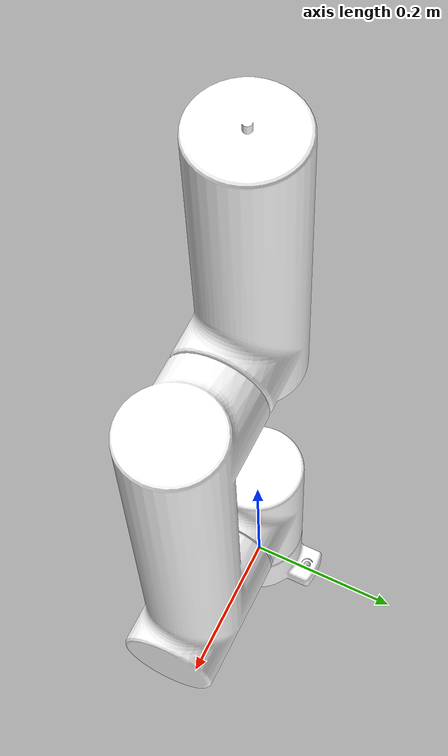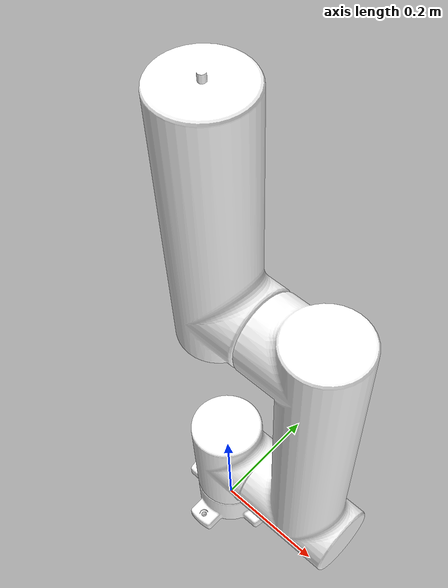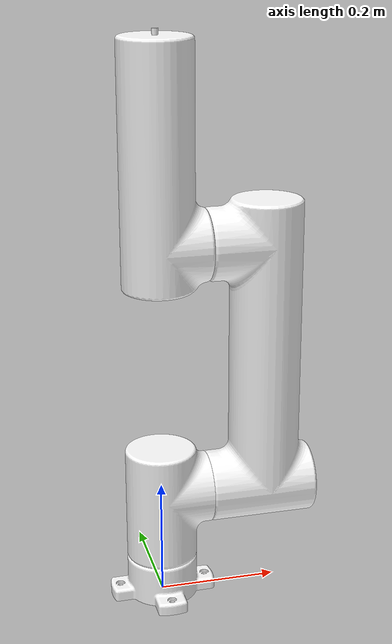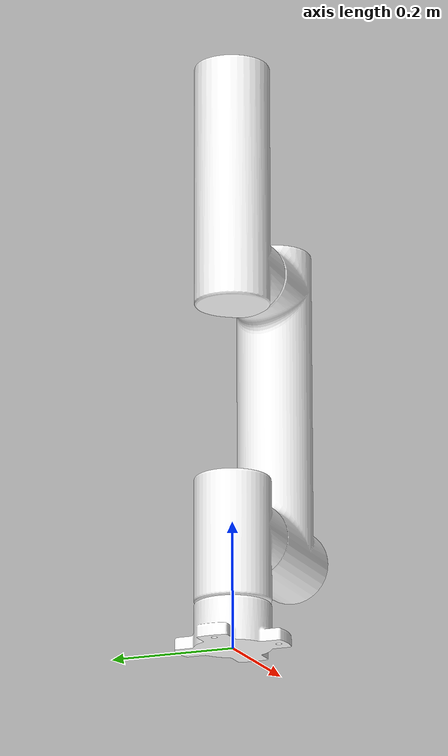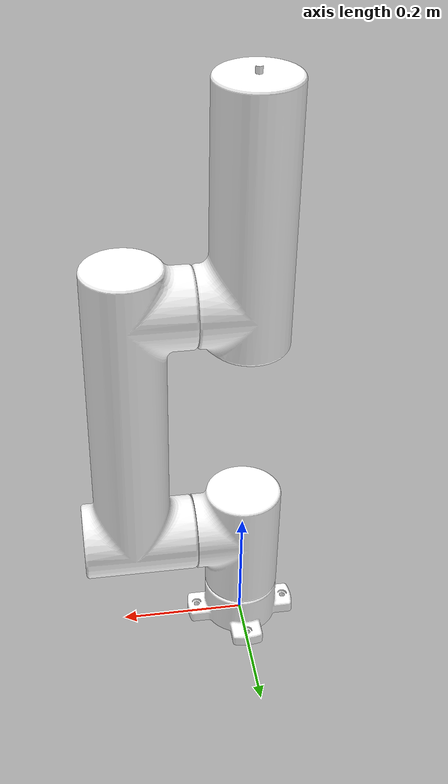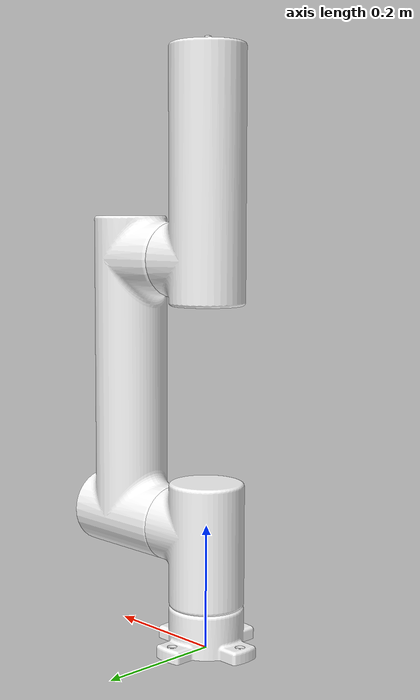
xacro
<?xml version="1.0" encoding="utf-8"?>
<robot xmlns:xacro="http://www.ros.org/wiki/xacro" name="myrobot">

	<xacro:arg name="gazebo" default="true"/>

  <xacro:include filename="$(find myrobot_description)/robots/myrobot.xacro" >
  	<xacro:arg name="gazebo" value="${gazebo}"/>
  </xacro:include>

  <xacro:myrobot connected_to='world' arm_id='myrobot'/>
</robot>

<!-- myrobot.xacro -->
<robot xmlns:xacro="http://www.ros.org/wiki/xacro" name="myrobot">

  <xacro:macro name="myrobot" params="arm_id:='myrobot' package_name:='myrobot_description' connected_to:='' xyz:='0 0 0' rpy:='0 0 0' hardware_interface:=''">
    <xacro:unless value="${not connected_to}">
      <link name="${connected_to}"/>
      <joint name="${arm_id}_joint_${connected_to}" type="fixed">
        <parent link="${connected_to}"/>
        <child link="${arm_id}_link1"/>
        <origin rpy="${rpy}" xyz="${xyz}"/>
      </joint>
    </xacro:unless>

    <xacro:property name="PI" value="3.1415926535897931"/>
    <xacro:property name="mass" value="1" />
    <!-- arbitrary value for mass -->
    <xacro:property name="width" value="0.1" />
    <!-- Square dimensions (widthxwidth) of beams -->
    <xacro:property name="height1" value="2" />
    <!-- Link 1 -->
    <xacro:property name="height2" value="1" />
    <!-- Link 2 -->
    <xacro:property name="height3" value="1" />
    <!-- Link 3 -->

    <!-- Base Link -->
    <link name="${arm_id}_link1">
      <collision>
        <origin xyz="0 0 0" rpy="0 0 0"/>
        <geometry>
          <mesh filename="package://myrobot_description/meshes/Base.stl"/>
        </geometry>
      </collision>

      <visual>
        <origin xyz="0 0 0" rpy="0 0 0"/>
        <geometry>
          <mesh filename="package://myrobot_description/meshes/Base.stl"/>
        </geometry>
        <material name="">
          <color rgba="1 1 1 1"/>
        </material>
      </visual>

      <inertial>
        <origin xyz="0 0 0" rpy="0 0 0"/>
        <mass value="${mass}"/>
        <inertia ixx="${mass / 12.0 * (width*width + height1*height1)}" ixy="0.0" ixz="0.0" iyy="${mass / 12.0 * (height1*height1 + width*width)}" iyz="0.0" izz="${mass / 12.0 * (width*width + width*width)}"/>
      </inertial>
    </link>

    <joint name="${arm_id}_joint1" type="continuous">
      <parent link="${arm_id}_link1"/>
      <child link="${arm_id}_link2"/>
      <origin xyz="0 0 0.07" rpy="0 0 0"/>
      <axis xyz="0 0 1"/>
      <dynamics damping="0.7"/>
    </joint>

    <!-- Middle Link -->
    <link name="${arm_id}_link2">
      <collision>
        <origin xyz="0 0 0" rpy="0 0 0"/>
        <geometry>
          <mesh filename="package://myrobot_description/meshes/Link1.stl"/>
        </geometry>
      </collision>

      <visual>
        <origin xyz="0 0 0" rpy="0 0 0"/>
        <geometry>
          <mesh filename="package://myrobot_description/meshes/Link1.stl"/>
        </geometry>
        <material name="">
          <color rgba="1 1 1 1"/>
        </material>
      </visual>

      <inertial>
        <origin xyz="0 0 0" rpy="0 0 0"/>
        <mass value="${mass}"/>
        <inertia ixx="${mass / 12.0 * (width*width + height2*height2)}" ixy="0.0" ixz="0.0" iyy="${mass / 12.0 * (height2*height2 + width*width)}" iyz="0.0" izz="${mass / 12.0 * (width*width + width*width)}"/>
      </inertial>
    </link>

    <joint name="${arm_id}_joint2" type="continuous">
      <parent link="${arm_id}_link2"/>
      <child link="${arm_id}_link3"/>
      <origin xyz="0.08 0 0.12" rpy="${pi/2} 0 ${pi/2}"/>
      <axis xyz="0 0 1"/>
      <dynamics damping="0.7"/>
    </joint>

    <!-- Top Link -->
    <link name="${arm_id}_link3">
      <collision>
        <origin xyz="0 0 0" rpy="0 0 0"/>
        <geometry>
          <mesh filename="package://myrobot_description/meshes/Link2.stl"/>
        </geometry>
      </collision>

      <visual>
        <origin xyz="0 0 0" rpy="0 0 0"/>
        <geometry>
          <mesh filename="package://myrobot_description/meshes/Link2.stl"/>
        </geometry>
        <material name="">
          <color rgba="1 1 1 1"/>
        </material>
      </visual>

      <inertial>
        <origin xyz="0 0 0" rpy="0 0 0"/>
        <mass value="${mass}"/>
        <inertia ixx="${mass / 12.0 * (width*width + height3*height3)}" ixy="0.0" ixz="0.0" iyy="${mass / 12.0 * (height3*height3 + width*width)}" iyz="0.0" izz="${mass / 12.0 * (width*width + width*width)}"/>
      </inertial>
    </link>

    <joint name="${arm_id}_joint3" type="continuous">
      <parent link="${arm_id}_link3"/>
      <child link="${arm_id}_link4"/>
      <origin xyz="0 0.43 0" rpy="0 0 0"/>
      <axis xyz="0 0 1"/>
      <dynamics damping="0.7"/>
    </joint>

    <!-- Top Link -->
    <link name="${arm_id}_link4">
      <collision>
        <origin xyz="0 0 0" rpy="0 0 0"/>
        <geometry>
          <mesh filename="package://myrobot_description/meshes/Link3.stl"/>
        </geometry>
      </collision>

      <visual>
        <origin xyz="0 0 0" rpy="0 0 0"/>
        <geometry>
          <mesh filename="package://myrobot_description/meshes/Link3.stl"/>
        </geometry>
        <material name="">
          <color rgba="1 1 1 1"/>
        </material>
      </visual>

      <inertial>
        <origin xyz="0 0 0" rpy="0 0 0"/>
        <mass value="${mass}"/>
        <inertia ixx="${mass / 12.0 * (width*width + height3*height3)}" ixy="0.0" ixz="0.0" iyy="${mass / 12.0 * (height3*height3 + width*width)}" iyz="0.0" izz="${mass / 12.0 * (width*width + width*width)}"/>
      </inertial>
    </link>

    <!-- GAZEBO -->
    <xacro:arg name="gazebo" default="true"/>
    <xacro:arg name="hardware_interface" default="EffortJointInterface"/>
    <gazebo>
      <plugin name="gazebo_ros_control" filename="libgazebo_ros_control.so">
        <robotNamespace>${arm_id}</robotNamespace>
      </plugin>
    </gazebo>

    <gazebo reference="${arm_id}_link1">
      <turnGravityOff>false</turnGravityOff>
    </gazebo>
    <gazebo reference="${arm_id}_link2">
      <turnGravityOff>false</turnGravityOff>
    </gazebo>
    <gazebo reference="${arm_id}_link3">
      <turnGravityOff>false</turnGravityOff>
    </gazebo>
    <gazebo reference="${arm_id}_link4">
      <turnGravityOff>false</turnGravityOff>
    </gazebo>

    <transmission name="${arm_id}_joint1_trans">
      <type>transmission_interface/SimpleTransmission</type>
      <joint name="${arm_id}_joint1">
        <hardwareInterface>hardware_interface/EffortJointInterface</hardwareInterface>
      </joint>
      <actuator name="${arm_id}_joint1_motor">
        <hardwareInterface>hardware_interface/EffortJointInterface</hardwareInterface>
        <mechanicalReduction>1</mechanicalReduction>
      </actuator>
    </transmission>

    <transmission name="${arm_id}_joint2_trans">
      <type>transmission_interface/SimpleTransmission</type>
      <joint name="${arm_id}_joint2">
        <hardwareInterface>hardware_interface/EffortJointInterface</hardwareInterface>
      </joint>
      <actuator name="${arm_id}_joint2_motor">
        <hardwareInterface>hardware_interface/EffortJointInterface</hardwareInterface>
        <mechanicalReduction>1</mechanicalReduction>
      </actuator>
    </transmission>

    <transmission name="${arm_id}_joint3_trans">
      <type>transmission_interface/SimpleTransmission</type>
      <joint name="${arm_id}_joint3">
        <hardwareInterface>hardware_interface/EffortJointInterface</hardwareInterface>
      </joint>
      <actuator name="${arm_id}_joint3_motor">
        <hardwareInterface>hardware_interface/EffortJointInterface</hardwareInterface>
        <mechanicalReduction>1</mechanicalReduction>
      </actuator>
    </transmission>

  </xacro:macro>

</robot>
